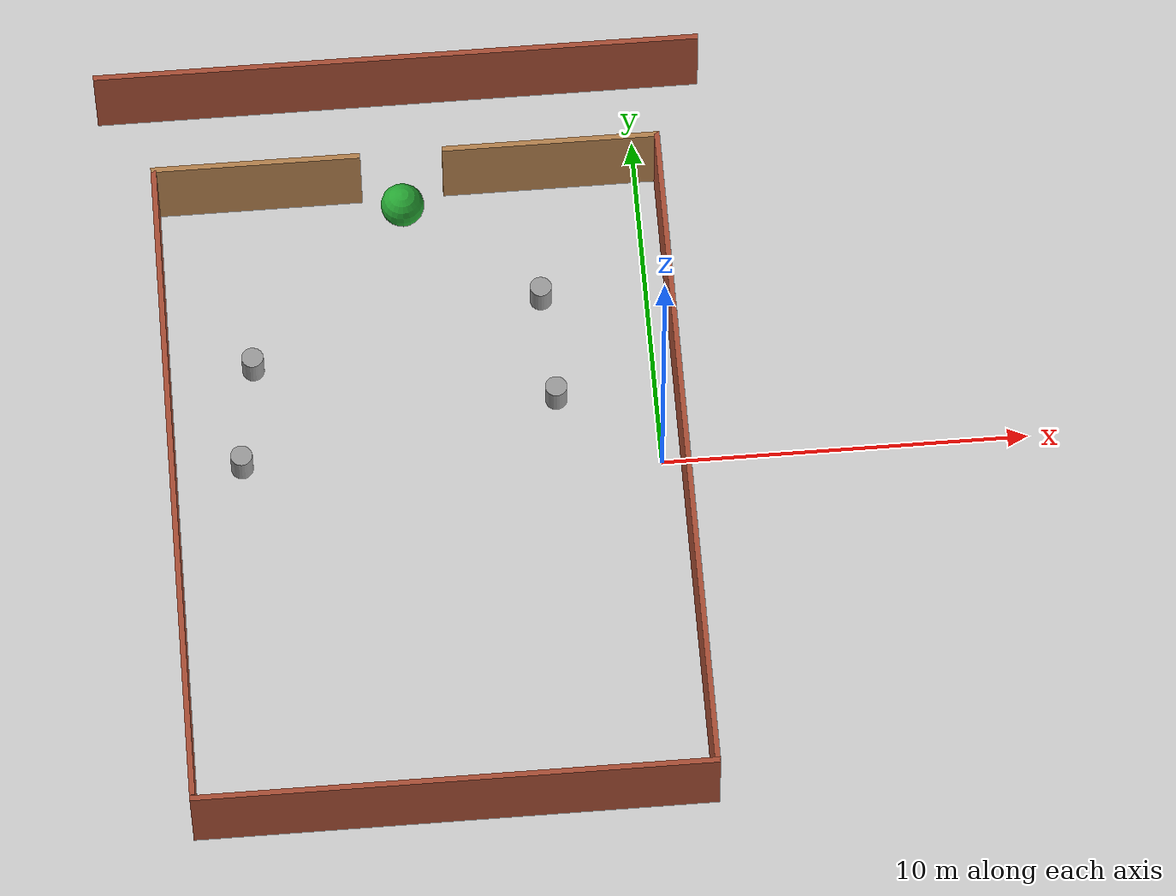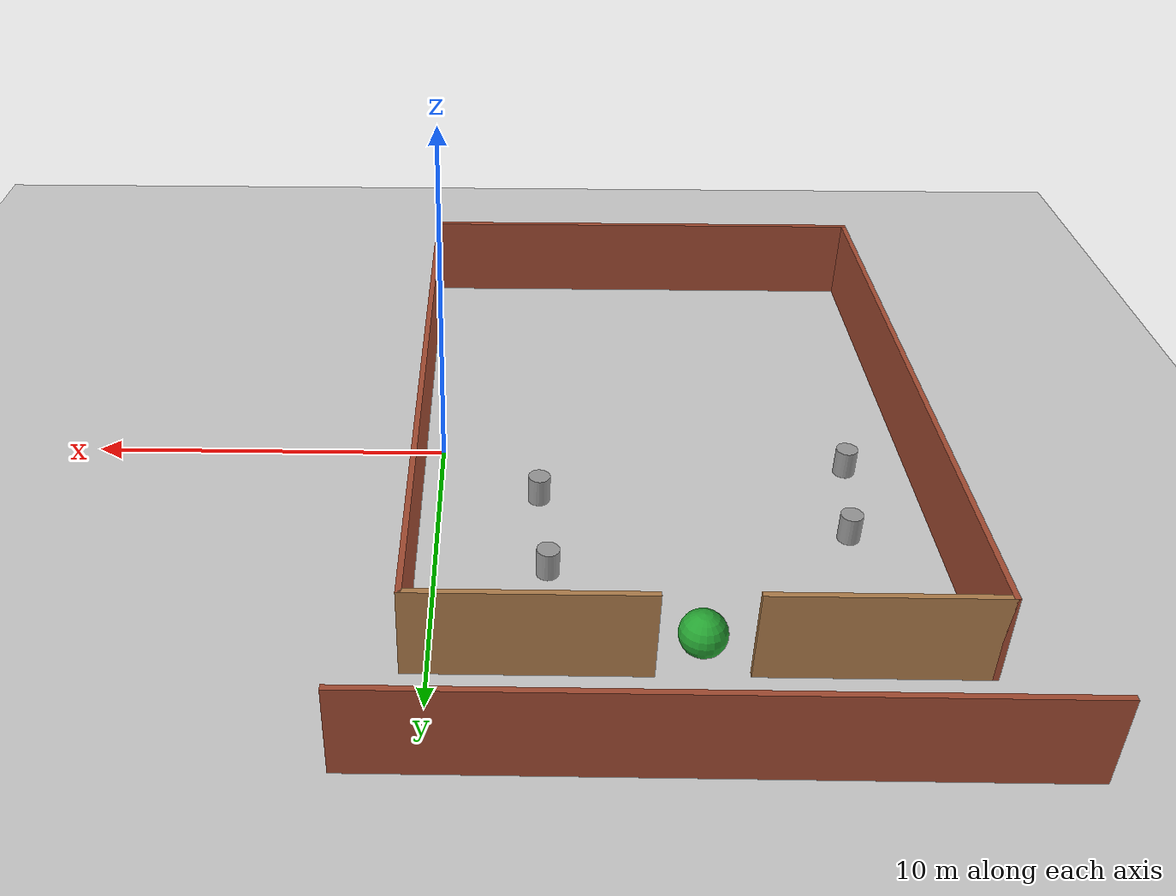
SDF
<?xml version="1.0"?>
<sdf version="1.4">
  <world name="default">
    <model name='ground_plane'>
      <static>1</static>
      <link name='link'>
        <collision name='collision'>
          <geometry>
            <plane>
              <normal>0 0 1</normal>
              <size>100 100</size>
            </plane>
          </geometry>
          <surface>
            <friction>
              <ode>
                <mu>100</mu>
                <mu2>50</mu2>
              </ode>
              <torsional>
                <ode/>
              </torsional>
            </friction>
            <contact>
              <ode/>
            </contact>
            <bounce/>
          </surface>
          <max_contacts>10</max_contacts>
        </collision>
        <visual name='visual'>
          <cast_shadows>0</cast_shadows>
          <geometry>
            <plane>
              <normal>0 0 1</normal>
              <size>100 100</size>
            </plane>
          </geometry>
          <material>
            <script>
              <uri>file://media/materials/scripts/gazebo.material</uri>
              <name>Gazebo/Tertiary</name>
            </script>
          </material>
        </visual>
        <self_collide>0</self_collide>
        <enable_wind>0</enable_wind>
        <kinematic>0</kinematic>
      </link>
    </model>
    <light name='sun' type='directional'>
      <cast_shadows>1</cast_shadows>
      <pose frame=''>0 0 10 0 -0 0</pose>
      <diffuse>0.8 0.8 0.8 1</diffuse>
      <specular>0.2 0.2 0.2 1</specular>
      <attenuation>
        <range>1000</range>
        <constant>0.9</constant>
        <linear>0.01</linear>
        <quadratic>0.001</quadratic>
      </attenuation>
      <direction>-0.5 0.1 -0.9</direction>
    </light>

    <!-- Other models -->

    <include>
      <uri>model://open_hall2</uri>
      <pose>-6.39 0.85 0 0 0 0</pose>
    </include>

    <include>
      <uri>model://dynamic_obstacle_1</uri>
      <pose>-11.4 0.72 0.4 0 0 0</pose>
    </include>

    <include>
      <uri>model://dynamic_obstacle_2</uri>
      <pose>-2.72 2.16 0.4 0 0 0</pose>
    </include>

    <include>
      <uri>model://dynamic_obstacle_3</uri>
      <pose>-10.92 3.71 0.4 0 0 0</pose>
    </include>

    <include>
      <uri>model://dynamic_obstacle_4</uri>
      <pose>-2.9 5.28 0.4 0 0 0</pose>
    </include>

    <include>
      <uri>model://goal_location</uri>
      <pose>-6.5 8.2 0.7 0 0 0</pose>
    </include>

    <!-- User Camera -->
    <gui fullscreen='0'>
      <camera name='user_camera'>
        <pose frame=''>0.92 -7.97 22.96 0 0.675643 1.58</pose>
        <view_controller>orbit</view_controller>
        <projection_type>perspective</projection_type>
      </camera>
    </gui>
  </world>
</sdf>

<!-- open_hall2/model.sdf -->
<sdf version='1.6'>
  <model name='open_hall2'>
    <pose frame=''>-6.64514 1.32245 0 0 -0 0</pose>
    <link name='Wall_0'>
      <collision name='Wall_0_Collision'>
        <geometry>
          <box>
            <size>19 0.15 2.5</size>
          </box>
        </geometry>
        <pose frame=''>0 0 1.25 0 -0 0</pose>
      </collision>
      <visual name='Wall_0_Visual'>
        <pose frame=''>0 0 1.25 0 -0 0</pose>
        <geometry>
          <box>
            <size>19 0.15 2.5</size>
          </box>
        </geometry>
        <material>
          <script>
            <uri>file://media/materials/scripts/gazebo.material</uri>
            <name>Gazebo/Bricks</name>
          </script>
          <ambient>1 1 1 1</ambient>
        </material>
        <meta>
          <layer>0</layer>
        </meta>
      </visual>
      <pose frame=''>-6.8756 -1.43863 0 0 -0 -1.5708</pose>
    </link>
    <link name='Wall_10'>
      <collision name='Wall_10_Collision'>
        <geometry>
          <box>
            <size>14 0.15 2.5</size>
          </box>
        </geometry>
        <pose frame=''>0 0 1.25 0 -0 0</pose>
      </collision>
      <visual name='Wall_10_Visual'>
        <pose frame=''>0 0 1.25 0 -0 0</pose>
        <geometry>
          <box>
            <size>14 0.15 2.5</size>
          </box>
        </geometry>
        <material>
          <script>
            <uri>file://media/materials/scripts/gazebo.material</uri>
            <name>Gazebo/Bricks</name>
          </script>
          <ambient>1 1 1 1</ambient>
        </material>
        <meta>
          <layer>0</layer>
        </meta>
      </visual>
      <pose frame=''>0.053627 -11.0312 0 0 -0 3.14159</pose>
    </link>
    <link name='Wall_12'>
      <collision name='Wall_12_Collision'>
        <geometry>
          <box>
            <size>16.75 0.15 2.5</size>
          </box>
        </geometry>
        <pose frame=''>0 0 1.25 0 -0 0</pose>
      </collision>
      <visual name='Wall_12_Visual'>
        <pose frame=''>0 0 1.25 0 -0 0</pose>
        <geometry>
          <box>
            <size>16.75 0.15 2.5</size>
          </box>
        </geometry>
        <material>
          <script>
            <uri>file://media/materials/scripts/gazebo.material</uri>
            <name>Gazebo/Bricks</name>
          </script>
          <ambient>1 1 1 1</ambient>
        </material>
        <meta>
          <layer>0</layer>
        </meta>
      </visual>
      <pose frame=''>0 11.0312 0 0 -0 0</pose>
    </link>
    <link name='Wall_2'>
      <collision name='Wall_2_Collision'>
        <geometry>
          <box>
            <size>19.1513 0.15 2.5</size>
          </box>
        </geometry>
        <pose frame=''>0 0 1.25 0 -0 0</pose>
      </collision>
      <visual name='Wall_2_Visual'>
        <pose frame=''>0 0 1.25 0 -0 0</pose>
        <geometry>
          <box>
            <size>19.1513 0.15 2.5</size>
          </box>
        </geometry>
        <material>
          <script>
            <uri>file://media/materials/scripts/gazebo.material</uri>
            <name>Gazebo/Bricks</name>
          </script>
          <ambient>1 1 1 1</ambient>
        </material>
        <meta>
          <layer>0</layer>
        </meta>
      </visual>
      <pose frame=''>6.97863 -1.48396 0 0 -0 -1.5708</pose>
    </link>
    <link name='Wall_5'>
      <collision name='Wall_5_Collision'>
        <geometry>
          <box>
            <size>5.75 0.15 2.5</size>
          </box>
        </geometry>
        <pose frame=''>0 0 1.25 0 -0 0</pose>
      </collision>
      <visual name='Wall_5_Visual'>
        <pose frame=''>0 0 1.25 0 -0 0</pose>
        <geometry>
          <box>
            <size>5.75 0.15 2.5</size>
          </box>
        </geometry>
        <material>
          <script>
            <uri>file://media/materials/scripts/gazebo.material</uri>
            <name>Gazebo/Wood</name>
          </script>
          <ambient>1 1 1 1</ambient>
        </material>
        <meta>
          <layer>0</layer>
        </meta>
      </visual>
      <pose frame=''>-4.0756 7.98637 0 0 -0 0</pose>
    </link>
    <link name='Wall_7'>
      <collision name='Wall_7_Collision'>
        <geometry>
          <box>
            <size>6 0.15 2.5</size>
          </box>
        </geometry>
        <pose frame=''>0 0 1.25 0 -0 0</pose>
      </collision>
      <visual name='Wall_7_Visual'>
        <pose frame=''>0 0 1.25 0 -0 0</pose>
        <geometry>
          <box>
            <size>6 0.15 2.5</size>
          </box>
        </geometry>
        <material>
          <script>
            <uri>file://media/materials/scripts/gazebo.material</uri>
            <name>Gazebo/Wood</name>
          </script>
          <ambient>1 1 1 1</ambient>
        </material>
        <meta>
          <layer>0</layer>
        </meta>
      </visual>
      <pose frame=''>4.05363 8.0167 0 0 -0 3.14159</pose>
    </link>
    <static>1</static>
  </model>
</sdf>

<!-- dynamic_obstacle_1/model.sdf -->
<sdf version='1.6'>
  <model name='dynamic_obstacle_1'>
        <link name='link_2'>
      <inertial>
        <mass>0.104241</mass>
        <inertia>
          <ixx>0.0273737</ixx>
          <ixy>0</ixy>
          <ixz>0</ixz>
          <iyy>0.0273737</iyy>
          <iyz>0</iyz>
          <izz>0.0156413</izz>
        </inertia>
       <pose frame=''>0 0 -0.3 0 -0 0</pose>
      </inertial>
      <pose frame=''>-0 3e-06 0 0 -0 0</pose>

      <visual name='visual'>
        <pose frame=''>0 0 0 0 -0 0</pose>
        <geometry>
          <cylinder>
            <radius>0.3</radius>
            <length>0.8</length>
          </cylinder>
        </geometry>
        <material>
          <lighting>1</lighting>
          <script>
            <uri>file://media/materials/scripts/gazebo.material</uri>
            <name>Gazebo/Grey</name>
          </script>
        </material>
        <transparency>0</transparency>
        <cast_shadows>1</cast_shadows>
      </visual>

      <collision name='collision'>
        <laser_retro>0</laser_retro>
        <max_contacts>10</max_contacts>
        <pose frame=''>0 0 0 0 -0 0</pose>
        <geometry>
          <cylinder>
            <radius>0.3</radius>
            <length>0.8</length>
          </cylinder>
        </geometry>
        <surface>
          <friction>
            <ode>
              <mu>1</mu>
              <mu2>1</mu2>
              <fdir1>0 0 0</fdir1>
              <slip1>0</slip1>
              <slip2>0</slip2>
            </ode>
            <torsional>
              <coefficient>1</coefficient>
              <patch_radius>0</patch_radius>
              <surface_radius>0</surface_radius>
              <use_patch_radius>1</use_patch_radius>
              <ode>
                <slip>0</slip>
              </ode>
            </torsional>
          </friction>
          <bounce>
            <restitution_coefficient>0</restitution_coefficient>
            <threshold>1e+06</threshold>
          </bounce>
          <contact>
            <collide_without_contact>0</collide_without_contact>
            <collide_without_contact_bitmask>1</collide_without_contact_bitmask>
            <collide_bitmask>1</collide_bitmask>
            <ode>
              <soft_cfm>0</soft_cfm>
              <soft_erp>0.2</soft_erp>
              <kp>1e+13</kp>
              <kd>1</kd>
              <max_vel>0.01</max_vel>
              <min_depth>0</min_depth>
            </ode>
            <bullet>
              <split_impulse>1</split_impulse>
              <split_impulse_penetration_threshold>-0.01</split_impulse_penetration_threshold>
              <soft_cfm>0</soft_cfm>
              <soft_erp>0.2</soft_erp>
              <kp>1e+13</kp>
              <kd>1</kd>
            </bullet>
          </contact>
        </surface>
      </collision>
    </link>
    <static>0</static>
    <allow_auto_disable>1</allow_auto_disable>

    <plugin name="object_controller" filename="libgazebo_ros_planar_move.so">
      <robotNamespace>dynamic_obstacle_1</robotNamespace>
      <commandTopic>cmd_vel</commandTopic>
      <odometryTopic>odom</odometryTopic>
      <odometryFrame>odom</odometryFrame>
      <odometryRate>20.0</odometryRate>
      <robotBaseFrame>link_2</robotBaseFrame>
    </plugin>

  </model>
</sdf>

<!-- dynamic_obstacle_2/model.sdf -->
<sdf version='1.6'>
  <model name='dynamic_obstacle_2'>
    <link name='link_2'>
      <inertial>
        <mass>0.104241</mass>
        <inertia>
          <ixx>0.0273737</ixx>
          <ixy>0</ixy>
          <ixz>0</ixz>
          <iyy>0.0273737</iyy>
          <iyz>0</iyz>
          <izz>0.0156413</izz>
        </inertia>
       <pose frame=''>0 0 -0.3 0 -0 0</pose>
      </inertial>
      <pose frame=''>-0 3e-06 0 0 -0 0</pose>

      <visual name='visual'>
        <pose frame=''>0 0 0 0 -0 0</pose>
        <geometry>
          <cylinder>
            <radius>0.3</radius>
            <length>0.8</length>
          </cylinder>
        </geometry>
        <material>
          <lighting>1</lighting>
          <script>
            <uri>file://media/materials/scripts/gazebo.material</uri>
            <name>Gazebo/Grey</name>
          </script>
        </material>
        <transparency>0</transparency>
        <cast_shadows>1</cast_shadows>
      </visual>
      <collision name='collision'>
        <laser_retro>0</laser_retro>
        <max_contacts>10</max_contacts>
        <pose frame=''>0 0 0 0 -0 0</pose>
        <geometry>
          <cylinder>
            <radius>0.3</radius>
            <length>0.8</length>
          </cylinder>
        </geometry>
        <surface>
          <friction>
            <ode>
              <mu>1</mu>
              <mu2>1</mu2>
              <fdir1>0 0 0</fdir1>
              <slip1>0</slip1>
              <slip2>0</slip2>
            </ode>
            <torsional>
              <coefficient>1</coefficient>
              <patch_radius>0</patch_radius>
              <surface_radius>0</surface_radius>
              <use_patch_radius>1</use_patch_radius>
              <ode>
                <slip>0</slip>
              </ode>
            </torsional>
          </friction>
          <bounce>
            <restitution_coefficient>0</restitution_coefficient>
            <threshold>1e+06</threshold>
          </bounce>
          <contact>
            <collide_without_contact>0</collide_without_contact>
            <collide_without_contact_bitmask>1</collide_without_contact_bitmask>
            <collide_bitmask>1</collide_bitmask>
            <ode>
              <soft_cfm>0</soft_cfm>
              <soft_erp>0.2</soft_erp>
              <kp>1e+13</kp>
              <kd>1</kd>
              <max_vel>0.01</max_vel>
              <min_depth>0</min_depth>
            </ode>
            <bullet>
              <split_impulse>1</split_impulse>
              <split_impulse_penetration_threshold>-0.01</split_impulse_penetration_threshold>
              <soft_cfm>0</soft_cfm>
              <soft_erp>0.2</soft_erp>
              <kp>1e+13</kp>
              <kd>1</kd>
            </bullet>
          </contact>
        </surface>
      </collision>
    </link>
    <static>0</static>
    <allow_auto_disable>1</allow_auto_disable>

    <plugin name="object_controller" filename="libgazebo_ros_planar_move.so">
      <robotNamespace>dynamic_obstacle_2</robotNamespace>
      <commandTopic>cmd_vel</commandTopic>
      <odometryTopic>odom</odometryTopic>
      <odometryFrame>odom</odometryFrame>
      <odometryRate>20.0</odometryRate>
      <robotBaseFrame>link_2</robotBaseFrame>
    </plugin>

  </model>
</sdf>

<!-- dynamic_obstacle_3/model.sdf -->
<sdf version='1.6'>
  <model name='dynamic_obstacle_3'>
    <link name='link_2'>
      <inertial>
        <mass>0.104241</mass>
        <inertia>
          <ixx>0.0273737</ixx>
          <ixy>0</ixy>
          <ixz>0</ixz>
          <iyy>0.0273737</iyy>
          <iyz>0</iyz>
          <izz>0.0156413</izz>
        </inertia>
       <pose frame=''>0 0 -0.3 0 -0 0</pose>
      </inertial>
      <pose frame=''>-0 3e-06 0 0 -0 0</pose>

      <visual name='visual'>
        <pose frame=''>0 0 0 0 -0 0</pose>
        <geometry>
          <cylinder>
            <radius>0.3</radius>
            <length>0.8</length>
          </cylinder>
        </geometry>
        <material>
          <lighting>1</lighting>
          <script>
            <uri>file://media/materials/scripts/gazebo.material</uri>
            <name>Gazebo/Grey</name>
          </script>
        </material>
        <transparency>0</transparency>
        <cast_shadows>1</cast_shadows>
      </visual>

      <collision name='collision'>
        <laser_retro>0</laser_retro>
        <max_contacts>10</max_contacts>
        <pose frame=''>0 0 0 0 -0 0</pose>
        <geometry>
          <cylinder>
            <radius>0.3</radius>
            <length>0.8</length>
          </cylinder>
        </geometry>
        <surface>
          <friction>
            <ode>
              <mu>1</mu>
              <mu2>1</mu2>
              <fdir1>0 0 0</fdir1>
              <slip1>0</slip1>
              <slip2>0</slip2>
            </ode>
            <torsional>
              <coefficient>1</coefficient>
              <patch_radius>0</patch_radius>
              <surface_radius>0</surface_radius>
              <use_patch_radius>1</use_patch_radius>
              <ode>
                <slip>0</slip>
              </ode>
            </torsional>
          </friction>
          <bounce>
            <restitution_coefficient>0</restitution_coefficient>
            <threshold>1e+06</threshold>
          </bounce>
          <contact>
            <collide_without_contact>0</collide_without_contact>
            <collide_without_contact_bitmask>1</collide_without_contact_bitmask>
            <collide_bitmask>1</collide_bitmask>
            <ode>
              <soft_cfm>0</soft_cfm>
              <soft_erp>0.2</soft_erp>
              <kp>1e+13</kp>
              <kd>1</kd>
              <max_vel>0.01</max_vel>
              <min_depth>0</min_depth>
            </ode>
            <bullet>
              <split_impulse>1</split_impulse>
              <split_impulse_penetration_threshold>-0.01</split_impulse_penetration_threshold>
              <soft_cfm>0</soft_cfm>
              <soft_erp>0.2</soft_erp>
              <kp>1e+13</kp>
              <kd>1</kd>
            </bullet>
          </contact>
        </surface>
      </collision>
    </link>
    <static>0</static>
    <allow_auto_disable>1</allow_auto_disable>

    <plugin name="object_controller" filename="libgazebo_ros_planar_move.so">
      <robotNamespace>dynamic_obstacle_3</robotNamespace>
      <commandTopic>cmd_vel</commandTopic>
      <odometryTopic>odom</odometryTopic>
      <odometryFrame>odom</odometryFrame>
      <odometryRate>20.0</odometryRate>
      <robotBaseFrame>link_2</robotBaseFrame>
    </plugin>

  </model>
</sdf>

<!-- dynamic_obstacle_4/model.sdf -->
<sdf version='1.6'>
  <model name='dynamic_obstacle_4'>
        <link name='link_2'>
      <inertial>
        <mass>0.104241</mass>
        <inertia>
          <ixx>0.0273737</ixx>
          <ixy>0</ixy>
          <ixz>0</ixz>
          <iyy>0.0273737</iyy>
          <iyz>0</iyz>
          <izz>0.0156413</izz>
        </inertia>
       <pose frame=''>0 0 -0.3 0 -0 0</pose>
      </inertial>
      <pose frame=''>-0 3e-06 0 0 -0 0</pose>

      <visual name='visual'>
        <pose frame=''>0 0 0 0 -0 0</pose>
        <geometry>
          <cylinder>
            <radius>0.3</radius>
            <length>0.8</length>
          </cylinder>
        </geometry>
        <material>
          <lighting>1</lighting>
          <script>
            <uri>file://media/materials/scripts/gazebo.material</uri>
            <name>Gazebo/Grey</name>
          </script>
        </material>
        <transparency>0</transparency>
        <cast_shadows>1</cast_shadows>
      </visual>

      <collision name='collision'>
        <laser_retro>0</laser_retro>
        <max_contacts>10</max_contacts>
        <pose frame=''>0 0 0 0 -0 0</pose>
        <geometry>
          <cylinder>
            <radius>0.3</radius>
            <length>0.8</length>
          </cylinder>
        </geometry>
        <surface>
          <friction>
            <ode>
              <mu>1</mu>
              <mu2>1</mu2>
              <fdir1>0 0 0</fdir1>
              <slip1>0</slip1>
              <slip2>0</slip2>
            </ode>
            <torsional>
              <coefficient>1</coefficient>
              <patch_radius>0</patch_radius>
              <surface_radius>0</surface_radius>
              <use_patch_radius>1</use_patch_radius>
              <ode>
                <slip>0</slip>
              </ode>
            </torsional>
          </friction>
          <bounce>
            <restitution_coefficient>0</restitution_coefficient>
            <threshold>1e+06</threshold>
          </bounce>
          <contact>
            <collide_without_contact>0</collide_without_contact>
            <collide_without_contact_bitmask>1</collide_without_contact_bitmask>
            <collide_bitmask>1</collide_bitmask>
            <ode>
              <soft_cfm>0</soft_cfm>
              <soft_erp>0.2</soft_erp>
              <kp>1e+13</kp>
              <kd>1</kd>
              <max_vel>0.01</max_vel>
              <min_depth>0</min_depth>
            </ode>
            <bullet>
              <split_impulse>1</split_impulse>
              <split_impulse_penetration_threshold>-0.01</split_impulse_penetration_threshold>
              <soft_cfm>0</soft_cfm>
              <soft_erp>0.2</soft_erp>
              <kp>1e+13</kp>
              <kd>1</kd>
            </bullet>
          </contact>
        </surface>
      </collision>
    </link>
    <static>0</static>
    <allow_auto_disable>1</allow_auto_disable>

    <plugin name="object_controller" filename="libgazebo_ros_planar_move.so">
      <robotNamespace>dynamic_obstacle_4</robotNamespace>
      <commandTopic>cmd_vel</commandTopic>
      <odometryTopic>odom</odometryTopic>
      <odometryFrame>odom</odometryFrame>
      <odometryRate>20.0</odometryRate>
      <robotBaseFrame>link_2</robotBaseFrame>
    </plugin>

  </model>
</sdf>

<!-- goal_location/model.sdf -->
<sdf version='1.6'>
  <model name='goal_location'>

    <link name='link_0'>
        <inertial>
          <mass>0.0001</mass>
          <inertia>
            <ixx>1e-05</ixx>
            <ixy>0</ixy>
            <ixz>0</ixz>
            <iyy>1e-05</iyy>
            <iyz>0</iyz>
            <izz>0</izz>
          </inertia>
        <pose frame=''>0 0 0 0 -0 0</pose>
      </inertial>
      <pose frame=''>2.4e-05 -1.2e-05 0 0 -0 0</pose>
      <gravity>0</gravity>
      <self_collide>0</self_collide>
      <kinematic>0</kinematic>
      <enable_wind>0</enable_wind>

      <visual name='visual'>
        <pose frame=''>0 0 0 0 -0 0</pose>
        <geometry>
          <sphere>
            <radius>0.6</radius>
          </sphere>
        </geometry>
        <material>
          <lighting>1</lighting>
          <script>
            <uri>file://media/materials/scripts/gazebo.material</uri>
            <name>Gazebo/Green</name>
          </script>
          <shader type='vertex'>
            <normal_map>__default__</normal_map>
          </shader>
          <ambient>1 0 0 1</ambient>
          <diffuse>0.2 1 0.2 1</diffuse>
          <specular>0.1 0.1 0.1 1</specular>
          <emissive>0 0 0 1</emissive>
        </material>
        <transparency>0</transparency>
        <cast_shadows>1</cast_shadows>
      </visual>

    </link>

    <static>1</static>
    <allow_auto_disable>1</allow_auto_disable>

  </model>
</sdf>
